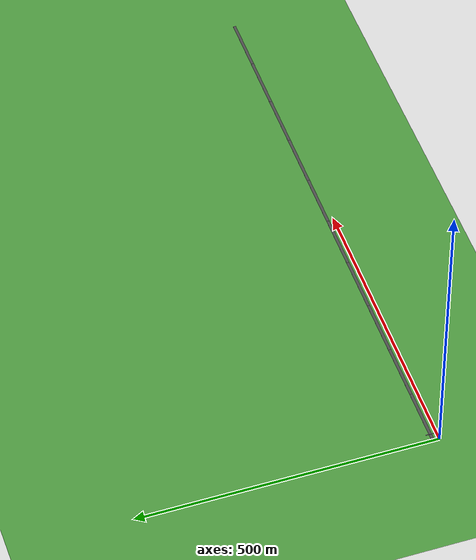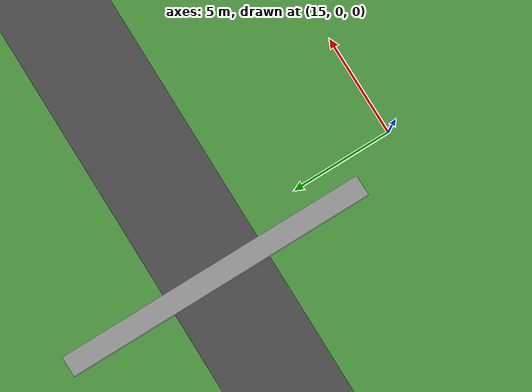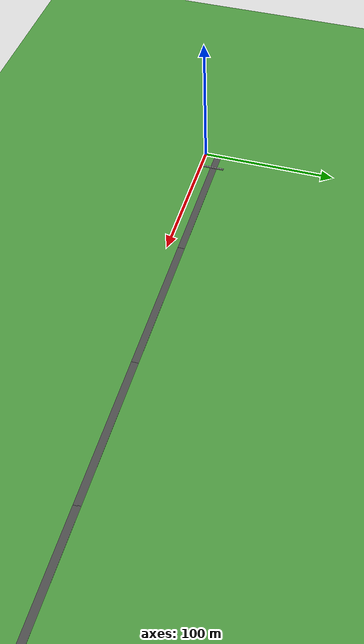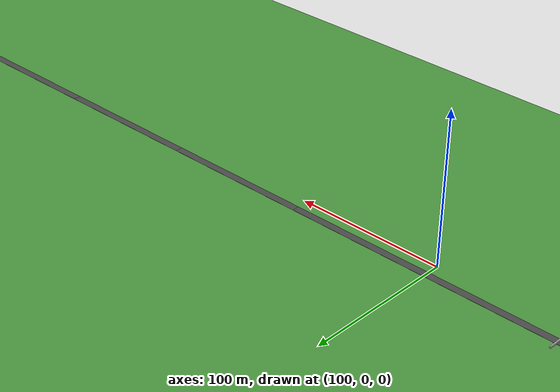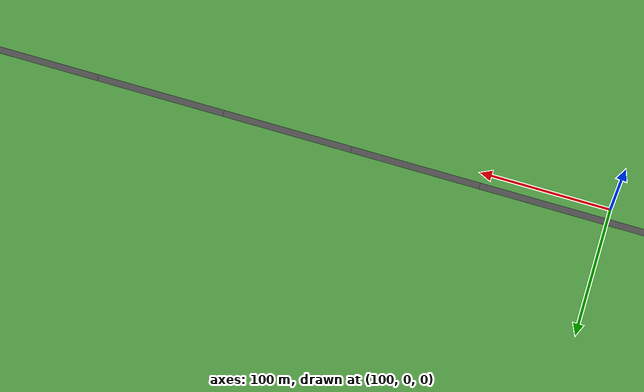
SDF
<sdf version="1.5">
 <world name="default">
  <light name="sun" type="directional">
   <pose>0 0 10 0 -0 0</pose>
   <diffuse>0.8 0.8 0.8 1</diffuse>
   <specular>0.2 0.2 0.2 1</specular>
   <attenuation>
    <range>1000</range>
    <constant>0.9</constant>
    <linear>0.01</linear>
    <quadratic>0.001</quadratic>
   </attenuation>
   <direction>-0.5 0.1 -0.9</direction>
  </light>
  <scene>
   <sky><clouds><speed>5</speed></clouds></sky>
   <ambient>0.4 0.4 0.4 1</ambient>
   <background>0.7 0.7 0.7 1</background>
   <shadows>1</shadows>
  </scene>
  <model name="ground_plane">
   <static>1</static>
   <link name="link">
    <pose>50 10 0 0 -0 0</pose>
    <collision name="collision">
     <geometry><plane><normal>0 0 1</normal><size>100 20</size></plane></geometry>
    </collision>
    <visual name="visual">
     <cast_shadows>0</cast_shadows>
     <geometry><plane><normal>0 0 1</normal><size>100 20</size></plane></geometry>
     <material>
      <script><uri>file://media/materials/scripts/gazebo.material</uri><name>Gazebo/Grass</name></script>
     </material>
    </visual>
   </link>
  </model>
  <model name="road_2_0_1">
   <pose>50 10 0.05 0 -0 0</pose>
   <static>1</static>
   <link name="link">
    <collision name="collision"><geometry><box><size>100 5 0.1</size></box></geometry></collision>
    <visual name="visual">
     <cast_shadows>0</cast_shadows>
     <geometry><box><size>100 5 0.1</size></box></geometry>
     <material>
      <script>
       <uri>models/comps_road/materials/scripts</uri>
       <uri>models/comps_road/materials/textures</uri>
       <name>comps_road</name>
      </script>
     </material>
    </visual>
   </link>
  </model>
  <physics name="default_physics" default="0" type="ode">
   <max_step_size>0.001</max_step_size>
   <real_time_factor>1</real_time_factor>
   <real_time_update_rate>1000</real_time_update_rate>
   <gravity>0 0 -9.8</gravity>
   <magnetic_field>6e-06 2.3e-05 -4.2e-05</magnetic_field>
  </physics>
  <audio><device>default</device></audio>
  <spherical_coordinates>
   <surface_model>EARTH_WGS84</surface_model>
   <latitude_deg>0</latitude_deg>
   <longitude_deg>0</longitude_deg>
   <elevation>0</elevation>
   <heading_deg>0</heading_deg>
  </spherical_coordinates>
  <model name="road_2_0_1_clone">
   <pose>148 10 0.05 0 -0 0</pose>
   <static>1</static>
   <link name="link">
    <collision name="collision"><geometry><box><size>100 5 0.1</size></box></geometry></collision>
    <visual name="visual">
     <cast_shadows>0</cast_shadows>
     <geometry><box><size>100 5 0.1</size></box></geometry>
     <material>
      <script>
       <uri>models/comps_road/materials/scripts</uri>
       <uri>models/comps_road/materials/textures</uri>
       <name>comps_road</name>
      </script>
     </material>
    </visual>
   </link>
  </model>
  <model name="road_2_0_1_clone_0">
   <pose>248 10 0.05 0 -0 0</pose>
   <static>1</static>
   <link name="link">
    <collision name="collision"><geometry><box><size>100 5 0.1</size></box></geometry></collision>
    <visual name="visual">
     <cast_shadows>0</cast_shadows>
     <geometry><box><size>100 5 0.1</size></box></geometry>
     <material>
      <script>
       <uri>models/comps_road/materials/scripts</uri>
       <uri>models/comps_road/materials/textures</uri>
       <name>comps_road</name>
      </script>
     </material>
    </visual>
   </link>
  </model>
  <model name="road_2_0_1_clone_1">
   <pose>347.551 10 0.05 0 -0 0</pose>
   <static>1</static>
   <link name="link">
    <collision name="collision"><geometry><box><size>100 5 0.1</size></box></geometry></collision>
    <visual name="visual">
     <cast_shadows>0</cast_shadows>
     <geometry><box><size>100 5 0.1</size></box></geometry>
     <material>
      <script>
       <uri>models/comps_road/materials/scripts</uri>
       <uri>models/comps_road/materials/textures</uri>
       <name>comps_road</name>
      </script>
     </material>
    </visual>
   </link>
  </model>
  <model name="road_2_0_1_clone_2">
   <pose>447 10 0.05 0 -0 0</pose>
   <static>1</static>
   <link name="link">
    <collision name="collision"><geometry><box><size>100 5 0.1</size></box></geometry></collision>
    <visual name="visual">
     <cast_shadows>0</cast_shadows>
     <geometry><box><size>100 5 0.1</size></box></geometry>
     <material>
      <script>
       <uri>models/comps_road/materials/scripts</uri>
       <uri>models/comps_road/materials/textures</uri>
       <name>comps_road</name>
      </script>
     </material>
    </visual>
   </link>
  </model>
  <model name="road_2_0_1_clone_3">
   <pose>546 10 0.05 0 -0 0</pose>
   <static>1</static>
   <link name="link">
    <collision name="collision"><geometry><box><size>100 5 0.1</size></box></geometry></collision>
    <visual name="visual">
     <cast_shadows>0</cast_shadows>
     <geometry><box><size>100 5 0.1</size></box></geometry>
     <material>
      <script>
       <uri>models/comps_road/materials/scripts</uri>
       <uri>models/comps_road/materials/textures</uri>
       <name>comps_road</name>
      </script>
     </material>
    </visual>
   </link>
  </model>
  <model name="road_2_0_1_clone_4">
   <pose>646 10 0.05 0 -0 0</pose>
   <static>1</static>
   <link name="link">
    <collision name="collision"><geometry><box><size>100 5 0.1</size></box></geometry></collision>
    <visual name="visual">
     <cast_shadows>0</cast_shadows>
     <geometry><box><size>100 5 0.1</size></box></geometry>
     <material>
      <script>
       <uri>models/comps_road/materials/scripts</uri>
       <uri>models/comps_road/materials/textures</uri>
       <name>comps_road</name>
      </script>
     </material>
    </visual>
   </link>
  </model>
  <model name="road_2_0_1_clone_5">
   <pose>745.425 10 0.05 0 -0 0</pose>
   <static>1</static>
   <link name="link">
    <collision name="collision"><geometry><box><size>100 5 0.1</size></box></geometry></collision>
    <visual name="visual">
     <cast_shadows>0</cast_shadows>
     <geometry><box><size>100 5 0.1</size></box></geometry>
     <material>
      <script>
       <uri>models/comps_road/materials/scripts</uri>
       <uri>models/comps_road/materials/textures</uri>
       <name>comps_road</name>
      </script>
     </material>
    </visual>
   </link>
  </model>
  <model name="road_2_0_1_clone_6">
   <pose>844.538 10 0.05 0 -0 0</pose>
   <static>1</static>
   <link name="link">
    <collision name="collision"><geometry><box><size>100 5 0.1</size></box></geometry></collision>
    <visual name="visual">
     <cast_shadows>0</cast_shadows>
     <geometry><box><size>100 5 0.1</size></box></geometry>
     <material>
      <script>
       <uri>models/comps_road/materials/scripts</uri>
       <uri>models/comps_road/materials/textures</uri>
       <name>comps_road</name>
      </script>
     </material>
    </visual>
   </link>
  </model>
  <model name="road_2_0_1_clone_7">
   <pose>944 10 0.05 0 -0 0</pose>
   <static>1</static>
   <link name="link">
    <collision name="collision"><geometry><box><size>100 5 0.1</size></box></geometry></collision>
    <visual name="visual">
     <cast_shadows>0</cast_shadows>
     <geometry><box><size>100 5 0.1</size></box></geometry>
     <material>
      <script>
       <uri>models/comps_road/materials/scripts</uri>
       <uri>models/comps_road/materials/textures</uri>
       <name>comps_road</name>
      </script>
     </material>
    </visual>
   </link>
  </model>
  <model name="unit_box_1">
   <pose>13.546 10.0469 0.5 0 -0 0</pose>
   <link name="link">
    <inertial>
     <mass>1</mass>
     <inertia>
      <ixx>0.166667</ixx>
      <ixy>0</ixy>
      <ixz>0</ixz>
      <iyy>0.166667</iyy>
      <iyz>0</iyz>
      <izz>0.166667</izz>
     </inertia>
    </inertial>
    <collision name="collision"><geometry><box><size>1 15.4152 1</size></box></geometry></collision>
    <visual name="visual">
     <geometry><box><size>1 15.4152 1</size></box></geometry>
     <material>
      <script><name>Gazebo/Grey</name><uri>file://media/materials/scripts/gazebo.material</uri></script>
     </material>
    </visual>
   </link>
  </model>
 </world>
</sdf>
